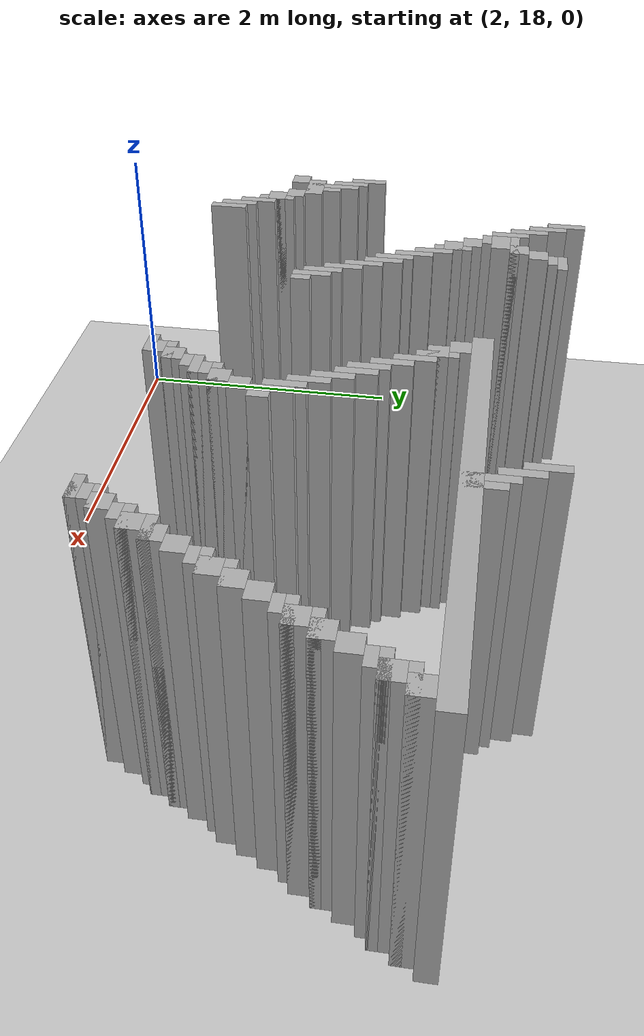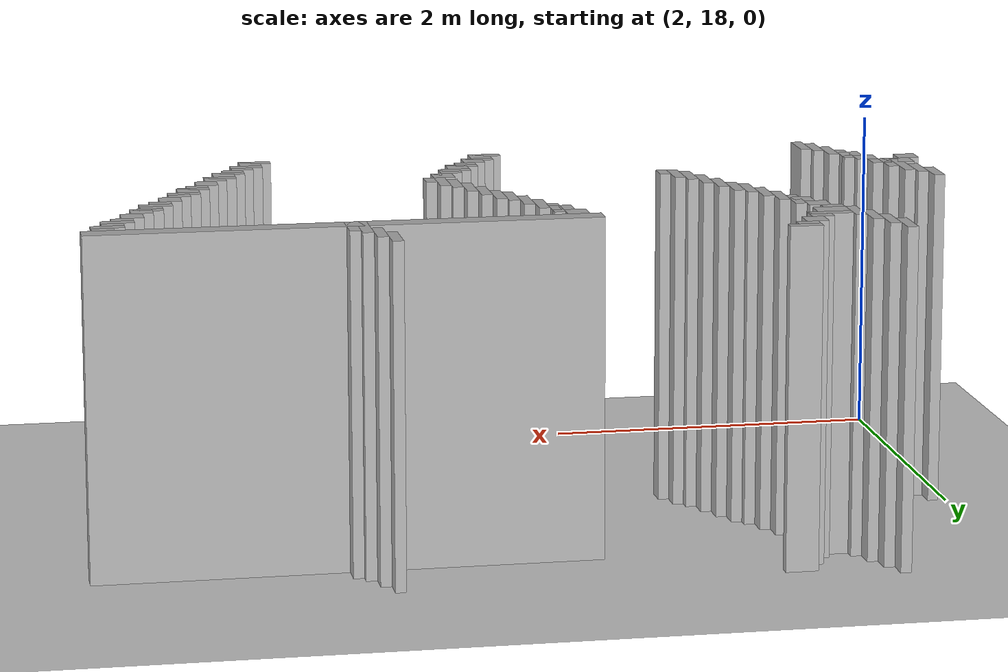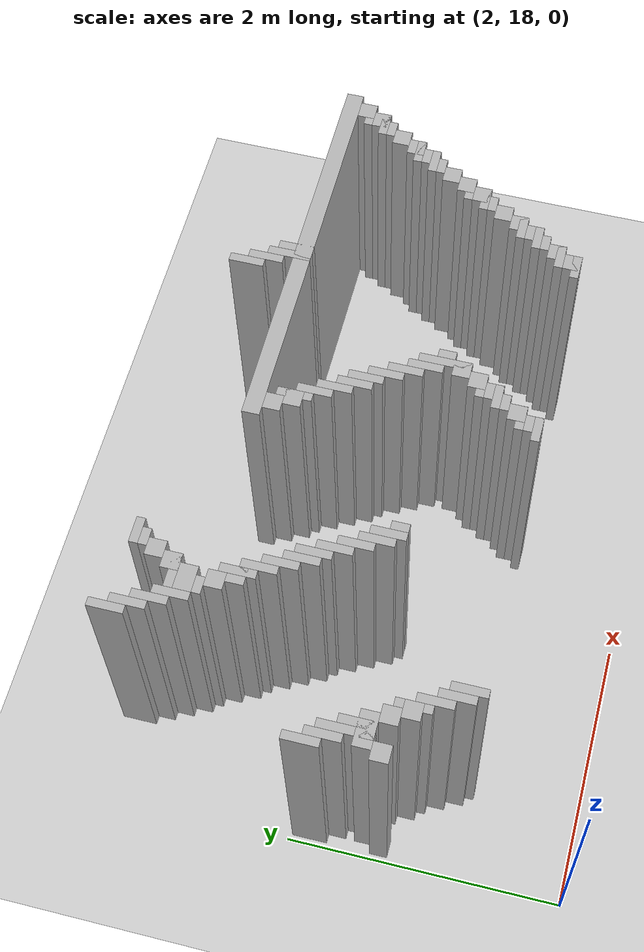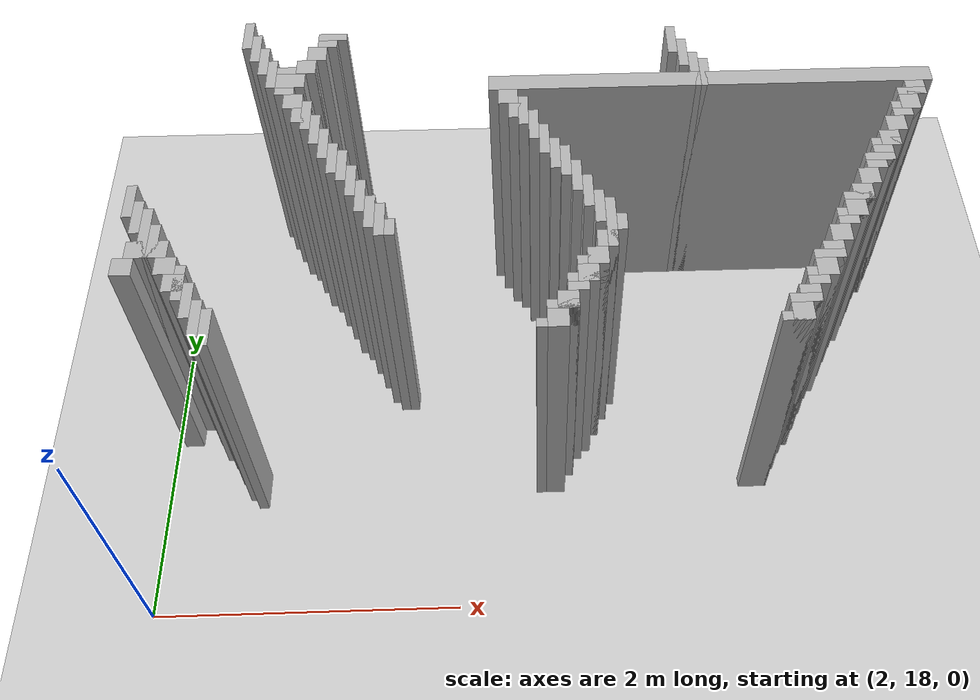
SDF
<sdf version="1.6">
 <world name="slam_world">
  <model name="ground_plane">
   <static>true</static>
   <link name="link">
    <collision name="collision">
     <geometry><plane><normal>0 0 1</normal><size>100 100</size></plane></geometry>
    </collision>
    <visual name="visual">
     <geometry><plane><normal>0 0 1</normal><size>100 100</size></plane></geometry>
     <material>
      <ambient>0.8 0.8 0.8 1</ambient>
      <diffuse>0.8 0.8 0.8 1</diffuse>
      <specular>0.8 0.8 0.8 1</specular>
     </material>
    </visual>
   </link>
  </model>
  <model name="wall_278">
   <static>true</static>
   <pose>2.6489361702127656 21.319148936170212 1.0 0 0 0</pose>
   <link name="link">
    <collision name="collision">
     <geometry><box><size>0.06382978723404255 0.2553191489361702 2.0</size></box></geometry>
    </collision>
    <visual name="visual">
     <geometry><box><size>0.06382978723404255 0.2553191489361702 2.0</size></box></geometry>
     <material><ambient>0.5 0.5 0.5 1</ambient><diffuse>0.7 0.7 0.7 1</diffuse></material>
    </visual>
   </link>
  </model>
  <model name="wall_292">
   <static>true</static>
   <pose>2.712765957446808 21.191489361702125 1.0 0 0 0</pose>
   <link name="link">
    <collision name="collision">
     <geometry><box><size>0.06382978723404255 0.2553191489361702 2.0</size></box></geometry>
    </collision>
    <visual name="visual">
     <geometry><box><size>0.06382978723404255 0.2553191489361702 2.0</size></box></geometry>
     <material><ambient>0.5 0.5 0.5 1</ambient><diffuse>0.7 0.7 0.7 1</diffuse></material>
    </visual>
   </link>
  </model>
  <model name="wall_293">
   <static>true</static>
   <pose>3.223404255319149 21.28723404255319 1.0 0 0 0</pose>
   <link name="link">
    <collision name="collision">
     <geometry><box><size>0.19148936170212766 0.06382978723404255 2.0</size></box></geometry>
    </collision>
    <visual name="visual">
     <geometry><box><size>0.19148936170212766 0.06382978723404255 2.0</size></box></geometry>
     <material><ambient>0.5 0.5 0.5 1</ambient><diffuse>0.7 0.7 0.7 1</diffuse></material>
    </visual>
   </link>
  </model>
  <model name="wall_294">
   <static>true</static>
   <pose>5.5212765957446805 21.191489361702125 1.0 0 0 0</pose>
   <link name="link">
    <collision name="collision">
     <geometry><box><size>0.06382978723404255 0.2553191489361702 2.0</size></box></geometry>
    </collision>
    <visual name="visual">
     <geometry><box><size>0.06382978723404255 0.2553191489361702 2.0</size></box></geometry>
     <material><ambient>0.5 0.5 0.5 1</ambient><diffuse>0.7 0.7 0.7 1</diffuse></material>
    </visual>
   </link>
  </model>
  <model name="wall_300">
   <static>true</static>
   <pose>3.1914893617021276 21.223404255319146 1.0 0 0 0</pose>
   <link name="link">
    <collision name="collision">
     <geometry><box><size>0.1276595744680851 0.06382978723404255 2.0</size></box></geometry>
    </collision>
    <visual name="visual">
     <geometry><box><size>0.1276595744680851 0.06382978723404255 2.0</size></box></geometry>
     <material><ambient>0.5 0.5 0.5 1</ambient><diffuse>0.7 0.7 0.7 1</diffuse></material>
    </visual>
   </link>
  </model>
  <model name="wall_306">
   <static>true</static>
   <pose>2.7765957446808507 21.06382978723404 1.0 0 0 0</pose>
   <link name="link">
    <collision name="collision">
     <geometry><box><size>0.06382978723404255 0.2553191489361702 2.0</size></box></geometry>
    </collision>
    <visual name="visual">
     <geometry><box><size>0.06382978723404255 0.2553191489361702 2.0</size></box></geometry>
     <material><ambient>0.5 0.5 0.5 1</ambient><diffuse>0.7 0.7 0.7 1</diffuse></material>
    </visual>
   </link>
  </model>
  <model name="wall_307">
   <static>true</static>
   <pose>3.127659574468085 21.127659574468083 1.0 0 0 0</pose>
   <link name="link">
    <collision name="collision">
     <geometry><box><size>0.1276595744680851 0.1276595744680851 2.0</size></box></geometry>
    </collision>
    <visual name="visual">
     <geometry><box><size>0.1276595744680851 0.1276595744680851 2.0</size></box></geometry>
     <material><ambient>0.5 0.5 0.5 1</ambient><diffuse>0.7 0.7 0.7 1</diffuse></material>
    </visual>
   </link>
  </model>
  <model name="wall_308">
   <static>true</static>
   <pose>5.585106382978723 21.06382978723404 1.0 0 0 0</pose>
   <link name="link">
    <collision name="collision">
     <geometry><box><size>0.06382978723404255 0.2553191489361702 2.0</size></box></geometry>
    </collision>
    <visual name="visual">
     <geometry><box><size>0.06382978723404255 0.2553191489361702 2.0</size></box></geometry>
     <material><ambient>0.5 0.5 0.5 1</ambient><diffuse>0.7 0.7 0.7 1</diffuse></material>
    </visual>
   </link>
  </model>
  <model name="wall_314">
   <static>true</static>
   <pose>2.840425531914893 20.936170212765955 1.0 0 0 0</pose>
   <link name="link">
    <collision name="collision">
     <geometry><box><size>0.06382978723404255 0.2553191489361702 2.0</size></box></geometry>
    </collision>
    <visual name="visual">
     <geometry><box><size>0.06382978723404255 0.2553191489361702 2.0</size></box></geometry>
     <material><ambient>0.5 0.5 0.5 1</ambient><diffuse>0.7 0.7 0.7 1</diffuse></material>
    </visual>
   </link>
  </model>
  <model name="wall_315">
   <static>true</static>
   <pose>3.0638297872340425 21.0 1.0 0 0 0</pose>
   <link name="link">
    <collision name="collision">
     <geometry><box><size>0.1276595744680851 0.1276595744680851 2.0</size></box></geometry>
    </collision>
    <visual name="visual">
     <geometry><box><size>0.1276595744680851 0.1276595744680851 2.0</size></box></geometry>
     <material><ambient>0.5 0.5 0.5 1</ambient><diffuse>0.7 0.7 0.7 1</diffuse></material>
    </visual>
   </link>
  </model>
  <model name="wall_316">
   <static>true</static>
   <pose>5.648936170212766 20.904255319148934 1.0 0 0 0</pose>
   <link name="link">
    <collision name="collision">
     <geometry><box><size>0.06382978723404255 0.3191489361702127 2.0</size></box></geometry>
    </collision>
    <visual name="visual">
     <geometry><box><size>0.06382978723404255 0.3191489361702127 2.0</size></box></geometry>
     <material><ambient>0.5 0.5 0.5 1</ambient><diffuse>0.7 0.7 0.7 1</diffuse></material>
    </visual>
   </link>
  </model>
  <model name="wall_322">
   <static>true</static>
   <pose>2.9999999999999996 20.968085106382976 1.0 0 0 0</pose>
   <link name="link">
    <collision name="collision">
     <geometry><box><size>0.2553191489361702 0.06382978723404255 2.0</size></box></geometry>
    </collision>
    <visual name="visual">
     <geometry><box><size>0.2553191489361702 0.06382978723404255 2.0</size></box></geometry>
     <material><ambient>0.5 0.5 0.5 1</ambient><diffuse>0.7 0.7 0.7 1</diffuse></material>
    </visual>
   </link>
  </model>
  <model name="wall_323">
   <static>true</static>
   <pose>5.712765957446808 20.872340425531913 1.0 0 0 0</pose>
   <link name="link">
    <collision name="collision">
     <geometry><box><size>0.06382978723404255 0.2553191489361702 2.0</size></box></geometry>
    </collision>
    <visual name="visual">
     <geometry><box><size>0.06382978723404255 0.2553191489361702 2.0</size></box></geometry>
     <material><ambient>0.5 0.5 0.5 1</ambient><diffuse>0.7 0.7 0.7 1</diffuse></material>
    </visual>
   </link>
  </model>
  <model name="wall_329">
   <static>true</static>
   <pose>2.9680851063829783 20.872340425531913 1.0 0 0 0</pose>
   <link name="link">
    <collision name="collision">
     <geometry><box><size>0.19148936170212766 0.1276595744680851 2.0</size></box></geometry>
    </collision>
    <visual name="visual">
     <geometry><box><size>0.19148936170212766 0.1276595744680851 2.0</size></box></geometry>
     <material><ambient>0.5 0.5 0.5 1</ambient><diffuse>0.7 0.7 0.7 1</diffuse></material>
    </visual>
   </link>
  </model>
  <model name="wall_335">
   <static>true</static>
   <pose>5.744680851063829 20.80851063829787 1.0 0 0 0</pose>
   <link name="link">
    <collision name="collision">
     <geometry><box><size>2.936170212765957 0.1276595744680851 2.0</size></box></geometry>
    </collision>
    <visual name="visual">
     <geometry><box><size>2.936170212765957 0.1276595744680851 2.0</size></box></geometry>
     <material><ambient>0.5 0.5 0.5 1</ambient><diffuse>0.7 0.7 0.7 1</diffuse></material>
    </visual>
   </link>
  </model>
  <model name="wall_340">
   <static>true</static>
   <pose>2.936170212765957 20.77659574468085 1.0 0 0 0</pose>
   <link name="link">
    <collision name="collision">
     <geometry><box><size>0.1276595744680851 0.06382978723404255 2.0</size></box></geometry>
    </collision>
    <visual name="visual">
     <geometry><box><size>0.1276595744680851 0.06382978723404255 2.0</size></box></geometry>
     <material><ambient>0.5 0.5 0.5 1</ambient><diffuse>0.7 0.7 0.7 1</diffuse></material>
    </visual>
   </link>
  </model>
  <model name="wall_345">
   <static>true</static>
   <pose>2.9999999999999996 20.680851063829785 1.0 0 0 0</pose>
   <link name="link">
    <collision name="collision">
     <geometry><box><size>0.1276595744680851 0.1276595744680851 2.0</size></box></geometry>
    </collision>
    <visual name="visual">
     <geometry><box><size>0.1276595744680851 0.1276595744680851 2.0</size></box></geometry>
     <material><ambient>0.5 0.5 0.5 1</ambient><diffuse>0.7 0.7 0.7 1</diffuse></material>
    </visual>
   </link>
  </model>
  <model name="wall_346">
   <static>true</static>
   <pose>4.404255319148936 20.680851063829785 1.0 0 0 0</pose>
   <link name="link">
    <collision name="collision">
     <geometry><box><size>0.1276595744680851 0.1276595744680851 2.0</size></box></geometry>
    </collision>
    <visual name="visual">
     <geometry><box><size>0.1276595744680851 0.1276595744680851 2.0</size></box></geometry>
     <material><ambient>0.5 0.5 0.5 1</ambient><diffuse>0.7 0.7 0.7 1</diffuse></material>
    </visual>
   </link>
  </model>
  <model name="wall_347">
   <static>true</static>
   <pose>7.085106382978723 20.680851063829785 1.0 0 0 0</pose>
   <link name="link">
    <collision name="collision">
     <geometry><box><size>0.1276595744680851 0.1276595744680851 2.0</size></box></geometry>
    </collision>
    <visual name="visual">
     <geometry><box><size>0.1276595744680851 0.1276595744680851 2.0</size></box></geometry>
     <material><ambient>0.5 0.5 0.5 1</ambient><diffuse>0.7 0.7 0.7 1</diffuse></material>
    </visual>
   </link>
  </model>
  <model name="wall_353">
   <static>true</static>
   <pose>3.095744680851064 20.5531914893617 1.0 0 0 0</pose>
   <link name="link">
    <collision name="collision">
     <geometry><box><size>0.06382978723404255 0.2553191489361702 2.0</size></box></geometry>
    </collision>
    <visual name="visual">
     <geometry><box><size>0.06382978723404255 0.2553191489361702 2.0</size></box></geometry>
     <material><ambient>0.5 0.5 0.5 1</ambient><diffuse>0.7 0.7 0.7 1</diffuse></material>
    </visual>
   </link>
  </model>
  <model name="wall_354">
   <static>true</static>
   <pose>4.5 20.5531914893617 1.0 0 0 0</pose>
   <link name="link">
    <collision name="collision">
     <geometry><box><size>0.06382978723404255 0.2553191489361702 2.0</size></box></geometry>
    </collision>
    <visual name="visual">
     <geometry><box><size>0.06382978723404255 0.2553191489361702 2.0</size></box></geometry>
     <material><ambient>0.5 0.5 0.5 1</ambient><diffuse>0.7 0.7 0.7 1</diffuse></material>
    </visual>
   </link>
  </model>
  <model name="wall_355">
   <static>true</static>
   <pose>7.053191489361701 20.648936170212764 1.0 0 0 0</pose>
   <link name="link">
    <collision name="collision">
     <geometry><box><size>0.19148936170212766 0.06382978723404255 2.0</size></box></geometry>
    </collision>
    <visual name="visual">
     <geometry><box><size>0.19148936170212766 0.06382978723404255 2.0</size></box></geometry>
     <material><ambient>0.5 0.5 0.5 1</ambient><diffuse>0.7 0.7 0.7 1</diffuse></material>
    </visual>
   </link>
  </model>
  <model name="wall_361">
   <static>true</static>
   <pose>3.0638297872340425 20.5531914893617 1.0 0 0 0</pose>
   <link name="link">
    <collision name="collision">
     <geometry><box><size>0.1276595744680851 0.1276595744680851 2.0</size></box></geometry>
    </collision>
    <visual name="visual">
     <geometry><box><size>0.1276595744680851 0.1276595744680851 2.0</size></box></geometry>
     <material><ambient>0.5 0.5 0.5 1</ambient><diffuse>0.7 0.7 0.7 1</diffuse></material>
    </visual>
   </link>
  </model>
  <model name="wall_362">
   <static>true</static>
   <pose>4.468085106382978 20.5531914893617 1.0 0 0 0</pose>
   <link name="link">
    <collision name="collision">
     <geometry><box><size>0.1276595744680851 0.1276595744680851 2.0</size></box></geometry>
    </collision>
    <visual name="visual">
     <geometry><box><size>0.1276595744680851 0.1276595744680851 2.0</size></box></geometry>
     <material><ambient>0.5 0.5 0.5 1</ambient><diffuse>0.7 0.7 0.7 1</diffuse></material>
    </visual>
   </link>
  </model>
  <model name="wall_363">
   <static>true</static>
   <pose>7.0212765957446805 20.5531914893617 1.0 0 0 0</pose>
   <link name="link">
    <collision name="collision">
     <geometry><box><size>0.1276595744680851 0.1276595744680851 2.0</size></box></geometry>
    </collision>
    <visual name="visual">
     <geometry><box><size>0.1276595744680851 0.1276595744680851 2.0</size></box></geometry>
     <material><ambient>0.5 0.5 0.5 1</ambient><diffuse>0.7 0.7 0.7 1</diffuse></material>
    </visual>
   </link>
  </model>
  <model name="wall_370">
   <static>true</static>
   <pose>3.1595744680851063 20.425531914893615 1.0 0 0 0</pose>
   <link name="link">
    <collision name="collision">
     <geometry><box><size>0.06382978723404255 0.2553191489361702 2.0</size></box></geometry>
    </collision>
    <visual name="visual">
     <geometry><box><size>0.06382978723404255 0.2553191489361702 2.0</size></box></geometry>
     <material><ambient>0.5 0.5 0.5 1</ambient><diffuse>0.7 0.7 0.7 1</diffuse></material>
    </visual>
   </link>
  </model>
  <model name="wall_371">
   <static>true</static>
   <pose>4.5638297872340425 20.425531914893615 1.0 0 0 0</pose>
   <link name="link">
    <collision name="collision">
     <geometry><box><size>0.06382978723404255 0.2553191489361702 2.0</size></box></geometry>
    </collision>
    <visual name="visual">
     <geometry><box><size>0.06382978723404255 0.2553191489361702 2.0</size></box></geometry>
     <material><ambient>0.5 0.5 0.5 1</ambient><diffuse>0.7 0.7 0.7 1</diffuse></material>
    </visual>
   </link>
  </model>
  <model name="wall_372">
   <static>true</static>
   <pose>6.989361702127659 20.52127659574468 1.0 0 0 0</pose>
   <link name="link">
    <collision name="collision">
     <geometry><box><size>0.19148936170212766 0.06382978723404255 2.0</size></box></geometry>
    </collision>
    <visual name="visual">
     <geometry><box><size>0.19148936170212766 0.06382978723404255 2.0</size></box></geometry>
     <material><ambient>0.5 0.5 0.5 1</ambient><diffuse>0.7 0.7 0.7 1</diffuse></material>
    </visual>
   </link>
  </model>
  <model name="wall_377">
   <static>true</static>
   <pose>6.957446808510638 20.457446808510635 1.0 0 0 0</pose>
   <link name="link">
    <collision name="collision">
     <geometry><box><size>0.1276595744680851 0.06382978723404255 2.0</size></box></geometry>
    </collision>
    <visual name="visual">
     <geometry><box><size>0.1276595744680851 0.06382978723404255 2.0</size></box></geometry>
     <material><ambient>0.5 0.5 0.5 1</ambient><diffuse>0.7 0.7 0.7 1</diffuse></material>
    </visual>
   </link>
  </model>
  <model name="wall_382">
   <static>true</static>
   <pose>3.223404255319149 20.29787234042553 1.0 0 0 0</pose>
   <link name="link">
    <collision name="collision">
     <geometry><box><size>0.06382978723404255 0.2553191489361702 2.0</size></box></geometry>
    </collision>
    <visual name="visual">
     <geometry><box><size>0.06382978723404255 0.2553191489361702 2.0</size></box></geometry>
     <material><ambient>0.5 0.5 0.5 1</ambient><diffuse>0.7 0.7 0.7 1</diffuse></material>
    </visual>
   </link>
  </model>
  <model name="wall_383">
   <static>true</static>
   <pose>4.627659574468085 20.29787234042553 1.0 0 0 0</pose>
   <link name="link">
    <collision name="collision">
     <geometry><box><size>0.06382978723404255 0.2553191489361702 2.0</size></box></geometry>
    </collision>
    <visual name="visual">
     <geometry><box><size>0.06382978723404255 0.2553191489361702 2.0</size></box></geometry>
     <material><ambient>0.5 0.5 0.5 1</ambient><diffuse>0.7 0.7 0.7 1</diffuse></material>
    </visual>
   </link>
  </model>
  <model name="wall_384">
   <static>true</static>
   <pose>6.8936170212765955 20.361702127659573 1.0 0 0 0</pose>
   <link name="link">
    <collision name="collision">
     <geometry><box><size>0.1276595744680851 0.1276595744680851 2.0</size></box></geometry>
    </collision>
    <visual name="visual">
     <geometry><box><size>0.1276595744680851 0.1276595744680851 2.0</size></box></geometry>
     <material><ambient>0.5 0.5 0.5 1</ambient><diffuse>0.7 0.7 0.7 1</diffuse></material>
    </visual>
   </link>
  </model>
  <model name="wall_391">
   <static>true</static>
   <pose>3.2872340425531914 20.170212765957444 1.0 0 0 0</pose>
   <link name="link">
    <collision name="collision">
     <geometry><box><size>0.06382978723404255 0.2553191489361702 2.0</size></box></geometry>
    </collision>
    <visual name="visual">
     <geometry><box><size>0.06382978723404255 0.2553191489361702 2.0</size></box></geometry>
     <material><ambient>0.5 0.5 0.5 1</ambient><diffuse>0.7 0.7 0.7 1</diffuse></material>
    </visual>
   </link>
  </model>
  <model name="wall_392">
   <static>true</static>
   <pose>4.691489361702128 20.170212765957444 1.0 0 0 0</pose>
   <link name="link">
    <collision name="collision">
     <geometry><box><size>0.06382978723404255 0.2553191489361702 2.0</size></box></geometry>
    </collision>
    <visual name="visual">
     <geometry><box><size>0.06382978723404255 0.2553191489361702 2.0</size></box></geometry>
     <material><ambient>0.5 0.5 0.5 1</ambient><diffuse>0.7 0.7 0.7 1</diffuse></material>
    </visual>
   </link>
  </model>
  <model name="wall_393">
   <static>true</static>
   <pose>6.829787234042553 20.234042553191486 1.0 0 0 0</pose>
   <link name="link">
    <collision name="collision">
     <geometry><box><size>0.1276595744680851 0.1276595744680851 2.0</size></box></geometry>
    </collision>
    <visual name="visual">
     <geometry><box><size>0.1276595744680851 0.1276595744680851 2.0</size></box></geometry>
     <material><ambient>0.5 0.5 0.5 1</ambient><diffuse>0.7 0.7 0.7 1</diffuse></material>
    </visual>
   </link>
  </model>
  <model name="wall_400">
   <static>true</static>
   <pose>3.351063829787234 20.106382978723403 1.0 0 0 0</pose>
   <link name="link">
    <collision name="collision">
     <geometry><box><size>0.06382978723404255 0.2553191489361702 2.0</size></box></geometry>
    </collision>
    <visual name="visual">
     <geometry><box><size>0.06382978723404255 0.2553191489361702 2.0</size></box></geometry>
     <material><ambient>0.5 0.5 0.5 1</ambient><diffuse>0.7 0.7 0.7 1</diffuse></material>
    </visual>
   </link>
  </model>
  <model name="wall_401">
   <static>true</static>
   <pose>4.75531914893617 20.106382978723403 1.0 0 0 0</pose>
   <link name="link">
    <collision name="collision">
     <geometry><box><size>0.06382978723404255 0.2553191489361702 2.0</size></box></geometry>
    </collision>
    <visual name="visual">
     <geometry><box><size>0.06382978723404255 0.2553191489361702 2.0</size></box></geometry>
     <material><ambient>0.5 0.5 0.5 1</ambient><diffuse>0.7 0.7 0.7 1</diffuse></material>
    </visual>
   </link>
  </model>
  <model name="wall_402">
   <static>true</static>
   <pose>6.797872340425531 20.202127659574465 1.0 0 0 0</pose>
   <link name="link">
    <collision name="collision">
     <geometry><box><size>0.19148936170212766 0.06382978723404255 2.0</size></box></geometry>
    </collision>
    <visual name="visual">
     <geometry><box><size>0.19148936170212766 0.06382978723404255 2.0</size></box></geometry>
     <material><ambient>0.5 0.5 0.5 1</ambient><diffuse>0.7 0.7 0.7 1</diffuse></material>
    </visual>
   </link>
  </model>
  <model name="wall_407">
   <static>true</static>
   <pose>6.76595744680851 20.106382978723403 1.0 0 0 0</pose>
   <link name="link">
    <collision name="collision">
     <geometry><box><size>0.1276595744680851 0.1276595744680851 2.0</size></box></geometry>
    </collision>
    <visual name="visual">
     <geometry><box><size>0.1276595744680851 0.1276595744680851 2.0</size></box></geometry>
     <material><ambient>0.5 0.5 0.5 1</ambient><diffuse>0.7 0.7 0.7 1</diffuse></material>
    </visual>
   </link>
  </model>
  <model name="wall_411">
   <static>true</static>
   <pose>3.4148936170212765 19.978723404255316 1.0 0 0 0</pose>
   <link name="link">
    <collision name="collision">
     <geometry><box><size>0.06382978723404255 0.2553191489361702 2.0</size></box></geometry>
    </collision>
    <visual name="visual">
     <geometry><box><size>0.06382978723404255 0.2553191489361702 2.0</size></box></geometry>
     <material><ambient>0.5 0.5 0.5 1</ambient><diffuse>0.7 0.7 0.7 1</diffuse></material>
    </visual>
   </link>
  </model>
  <model name="wall_412">
   <static>true</static>
   <pose>4.819148936170213 19.978723404255316 1.0 0 0 0</pose>
   <link name="link">
    <collision name="collision">
     <geometry><box><size>0.06382978723404255 0.2553191489361702 2.0</size></box></geometry>
    </collision>
    <visual name="visual">
     <geometry><box><size>0.06382978723404255 0.2553191489361702 2.0</size></box></geometry>
     <material><ambient>0.5 0.5 0.5 1</ambient><diffuse>0.7 0.7 0.7 1</diffuse></material>
    </visual>
   </link>
  </model>
  <model name="wall_413">
   <static>true</static>
   <pose>6.734042553191489 20.074468085106382 1.0 0 0 0</pose>
   <link name="link">
    <collision name="collision">
     <geometry><box><size>0.19148936170212766 0.06382978723404255 2.0</size></box></geometry>
    </collision>
    <visual name="visual">
     <geometry><box><size>0.19148936170212766 0.06382978723404255 2.0</size></box></geometry>
     <material><ambient>0.5 0.5 0.5 1</ambient><diffuse>0.7 0.7 0.7 1</diffuse></material>
    </visual>
   </link>
  </model>
  <model name="wall_418">
   <static>true</static>
   <pose>6.702127659574468 20.01063829787234 1.0 0 0 0</pose>
   <link name="link">
    <collision name="collision">
     <geometry><box><size>0.1276595744680851 0.06382978723404255 2.0</size></box></geometry>
    </collision>
    <visual name="visual">
     <geometry><box><size>0.1276595744680851 0.06382978723404255 2.0</size></box></geometry>
     <material><ambient>0.5 0.5 0.5 1</ambient><diffuse>0.7 0.7 0.7 1</diffuse></material>
    </visual>
   </link>
  </model>
  <model name="wall_421">
   <static>true</static>
   <pose>2.074468085106383 19.851063829787233 1.0 0 0 0</pose>
   <link name="link">
    <collision name="collision">
     <geometry><box><size>0.06382978723404255 0.2553191489361702 2.0</size></box></geometry>
    </collision>
    <visual name="visual">
     <geometry><box><size>0.06382978723404255 0.2553191489361702 2.0</size></box></geometry>
     <material><ambient>0.5 0.5 0.5 1</ambient><diffuse>0.7 0.7 0.7 1</diffuse></material>
    </visual>
   </link>
  </model>
  <model name="wall_422">
   <static>true</static>
   <pose>3.478723404255319 19.851063829787233 1.0 0 0 0</pose>
   <link name="link">
    <collision name="collision">
     <geometry><box><size>0.06382978723404255 0.2553191489361702 2.0</size></box></geometry>
    </collision>
    <visual name="visual">
     <geometry><box><size>0.06382978723404255 0.2553191489361702 2.0</size></box></geometry>
     <material><ambient>0.5 0.5 0.5 1</ambient><diffuse>0.7 0.7 0.7 1</diffuse></material>
    </visual>
   </link>
  </model>
  <model name="wall_423">
   <static>true</static>
   <pose>4.882978723404255 19.851063829787233 1.0 0 0 0</pose>
   <link name="link">
    <collision name="collision">
     <geometry><box><size>0.06382978723404255 0.2553191489361702 2.0</size></box></geometry>
    </collision>
    <visual name="visual">
     <geometry><box><size>0.06382978723404255 0.2553191489361702 2.0</size></box></geometry>
     <material><ambient>0.5 0.5 0.5 1</ambient><diffuse>0.7 0.7 0.7 1</diffuse></material>
    </visual>
   </link>
  </model>
  <model name="wall_424">
   <static>true</static>
   <pose>6.638297872340425 19.914893617021274 1.0 0 0 0</pose>
   <link name="link">
    <collision name="collision">
     <geometry><box><size>0.1276595744680851 0.1276595744680851 2.0</size></box></geometry>
    </collision>
    <visual name="visual">
     <geometry><box><size>0.1276595744680851 0.1276595744680851 2.0</size></box></geometry>
     <material><ambient>0.5 0.5 0.5 1</ambient><diffuse>0.7 0.7 0.7 1</diffuse></material>
    </visual>
   </link>
  </model>
  <model name="wall_430">
   <static>true</static>
   <pose>2.1382978723404253 19.723404255319146 1.0 0 0 0</pose>
   <link name="link">
    <collision name="collision">
     <geometry><box><size>0.06382978723404255 0.2553191489361702 2.0</size></box></geometry>
    </collision>
    <visual name="visual">
     <geometry><box><size>0.06382978723404255 0.2553191489361702 2.0</size></box></geometry>
     <material><ambient>0.5 0.5 0.5 1</ambient><diffuse>0.7 0.7 0.7 1</diffuse></material>
    </visual>
   </link>
  </model>
  <model name="wall_431">
   <static>true</static>
   <pose>3.5425531914893615 19.723404255319146 1.0 0 0 0</pose>
   <link name="link">
    <collision name="collision">
     <geometry><box><size>0.06382978723404255 0.2553191489361702 2.0</size></box></geometry>
    </collision>
    <visual name="visual">
     <geometry><box><size>0.06382978723404255 0.2553191489361702 2.0</size></box></geometry>
     <material><ambient>0.5 0.5 0.5 1</ambient><diffuse>0.7 0.7 0.7 1</diffuse></material>
    </visual>
   </link>
  </model>
  <model name="wall_432">
   <static>true</static>
   <pose>4.946808510638298 19.723404255319146 1.0 0 0 0</pose>
   <link name="link">
    <collision name="collision">
     <geometry><box><size>0.06382978723404255 0.2553191489361702 2.0</size></box></geometry>
    </collision>
    <visual name="visual">
     <geometry><box><size>0.06382978723404255 0.2553191489361702 2.0</size></box></geometry>
     <material><ambient>0.5 0.5 0.5 1</ambient><diffuse>0.7 0.7 0.7 1</diffuse></material>
    </visual>
   </link>
  </model>
  <model name="wall_433">
   <static>true</static>
   <pose>6.574468085106383 19.78723404255319 1.0 0 0 0</pose>
   <link name="link">
    <collision name="collision">
     <geometry><box><size>0.1276595744680851 0.1276595744680851 2.0</size></box></geometry>
    </collision>
    <visual name="visual">
     <geometry><box><size>0.1276595744680851 0.1276595744680851 2.0</size></box></geometry>
     <material><ambient>0.5 0.5 0.5 1</ambient><diffuse>0.7 0.7 0.7 1</diffuse></material>
    </visual>
   </link>
  </model>
  <model name="wall_439">
   <static>true</static>
   <pose>2.202127659574468 19.595744680851062 1.0 0 0 0</pose>
   <link name="link">
    <collision name="collision">
     <geometry><box><size>0.06382978723404255 0.3829787234042553 2.0</size></box></geometry>
    </collision>
    <visual name="visual">
     <geometry><box><size>0.06382978723404255 0.3829787234042553 2.0</size></box></geometry>
     <material><ambient>0.5 0.5 0.5 1</ambient><diffuse>0.7 0.7 0.7 1</diffuse></material>
    </visual>
   </link>
  </model>
  <model name="wall_440">
   <static>true</static>
   <pose>3.606382978723404 19.659574468085104 1.0 0 0 0</pose>
   <link name="link">
    <collision name="collision">
     <geometry><box><size>0.06382978723404255 0.2553191489361702 2.0</size></box></geometry>
    </collision>
    <visual name="visual">
     <geometry><box><size>0.06382978723404255 0.2553191489361702 2.0</size></box></geometry>
     <material><ambient>0.5 0.5 0.5 1</ambient><diffuse>0.7 0.7 0.7 1</diffuse></material>
    </visual>
   </link>
  </model>
  <model name="wall_441">
   <static>true</static>
   <pose>5.01063829787234 19.595744680851062 1.0 0 0 0</pose>
   <link name="link">
    <collision name="collision">
     <geometry><box><size>0.06382978723404255 0.3829787234042553 2.0</size></box></geometry>
    </collision>
    <visual name="visual">
     <geometry><box><size>0.06382978723404255 0.3829787234042553 2.0</size></box></geometry>
     <material><ambient>0.5 0.5 0.5 1</ambient><diffuse>0.7 0.7 0.7 1</diffuse></material>
    </visual>
   </link>
  </model>
  <model name="wall_442">
   <static>true</static>
   <pose>6.542553191489361 19.75531914893617 1.0 0 0 0</pose>
   <link name="link">
    <collision name="collision">
     <geometry><box><size>0.19148936170212766 0.06382978723404255 2.0</size></box></geometry>
    </collision>
    <visual name="visual">
     <geometry><box><size>0.19148936170212766 0.06382978723404255 2.0</size></box></geometry>
     <material><ambient>0.5 0.5 0.5 1</ambient><diffuse>0.7 0.7 0.7 1</diffuse></material>
    </visual>
   </link>
  </model>
  <model name="wall_447">
   <static>true</static>
   <pose>6.51063829787234 19.659574468085104 1.0 0 0 0</pose>
   <link name="link">
    <collision name="collision">
     <geometry><box><size>0.1276595744680851 0.1276595744680851 2.0</size></box></geometry>
    </collision>
    <visual name="visual">
     <geometry><box><size>0.1276595744680851 0.1276595744680851 2.0</size></box></geometry>
     <material><ambient>0.5 0.5 0.5 1</ambient><diffuse>0.7 0.7 0.7 1</diffuse></material>
    </visual>
   </link>
  </model>
  <model name="wall_450">
   <static>true</static>
   <pose>2.2659574468085104 19.53191489361702 1.0 0 0 0</pose>
   <link name="link">
    <collision name="collision">
     <geometry><box><size>0.06382978723404255 0.2553191489361702 2.0</size></box></geometry>
    </collision>
    <visual name="visual">
     <geometry><box><size>0.06382978723404255 0.2553191489361702 2.0</size></box></geometry>
     <material><ambient>0.5 0.5 0.5 1</ambient><diffuse>0.7 0.7 0.7 1</diffuse></material>
    </visual>
   </link>
  </model>
  <model name="wall_451">
   <static>true</static>
   <pose>3.6702127659574466 19.595744680851062 1.0 0 0 0</pose>
   <link name="link">
    <collision name="collision">
     <geometry><box><size>0.06382978723404255 0.1276595744680851 2.0</size></box></geometry>
    </collision>
    <visual name="visual">
     <geometry><box><size>0.06382978723404255 0.1276595744680851 2.0</size></box></geometry>
     <material><ambient>0.5 0.5 0.5 1</ambient><diffuse>0.7 0.7 0.7 1</diffuse></material>
    </visual>
   </link>
  </model>
  <model name="wall_452">
   <static>true</static>
   <pose>5.074468085106383 19.595744680851062 1.0 0 0 0</pose>
   <link name="link">
    <collision name="collision">
     <geometry><box><size>0.06382978723404255 0.1276595744680851 2.0</size></box></geometry>
    </collision>
    <visual name="visual">
     <geometry><box><size>0.06382978723404255 0.1276595744680851 2.0</size></box></geometry>
     <material><ambient>0.5 0.5 0.5 1</ambient><diffuse>0.7 0.7 0.7 1</diffuse></material>
    </visual>
   </link>
  </model>
  <model name="wall_453">
   <static>true</static>
   <pose>6.478723404255319 19.627659574468083 1.0 0 0 0</pose>
   <link name="link">
    <collision name="collision">
     <geometry><box><size>0.19148936170212766 0.06382978723404255 2.0</size></box></geometry>
    </collision>
    <visual name="visual">
     <geometry><box><size>0.19148936170212766 0.06382978723404255 2.0</size></box></geometry>
     <material><ambient>0.5 0.5 0.5 1</ambient><diffuse>0.7 0.7 0.7 1</diffuse></material>
    </visual>
   </link>
  </model>
  <model name="wall_458">
   <static>true</static>
   <pose>6.446808510638298 19.56382978723404 1.0 0 0 0</pose>
   <link name="link">
    <collision name="collision">
     <geometry><box><size>0.1276595744680851 0.06382978723404255 2.0</size></box></geometry>
    </collision>
    <visual name="visual">
     <geometry><box><size>0.1276595744680851 0.06382978723404255 2.0</size></box></geometry>
     <material><ambient>0.5 0.5 0.5 1</ambient><diffuse>0.7 0.7 0.7 1</diffuse></material>
    </visual>
   </link>
  </model>
  <model name="wall_461">
   <static>true</static>
   <pose>2.234042553191489 19.468085106382976 1.0 0 0 0</pose>
   <link name="link">
    <collision name="collision">
     <geometry><box><size>0.2553191489361702 0.1276595744680851 2.0</size></box></geometry>
    </collision>
    <visual name="visual">
     <geometry><box><size>0.2553191489361702 0.1276595744680851 2.0</size></box></geometry>
     <material><ambient>0.5 0.5 0.5 1</ambient><diffuse>0.7 0.7 0.7 1</diffuse></material>
    </visual>
   </link>
  </model>
  <model name="wall_462">
   <static>true</static>
   <pose>4.978723404255319 19.468085106382976 1.0 0 0 0</pose>
   <link name="link">
    <collision name="collision">
     <geometry><box><size>0.1276595744680851 0.1276595744680851 2.0</size></box></geometry>
    </collision>
    <visual name="visual">
     <geometry><box><size>0.1276595744680851 0.1276595744680851 2.0</size></box></geometry>
     <material><ambient>0.5 0.5 0.5 1</ambient><diffuse>0.7 0.7 0.7 1</diffuse></material>
    </visual>
   </link>
  </model>
  <model name="wall_463">
   <static>true</static>
   <pose>6.382978723404255 19.468085106382976 1.0 0 0 0</pose>
   <link name="link">
    <collision name="collision">
     <geometry><box><size>0.1276595744680851 0.1276595744680851 2.0</size></box></geometry>
    </collision>
    <visual name="visual">
     <geometry><box><size>0.1276595744680851 0.1276595744680851 2.0</size></box></geometry>
     <material><ambient>0.5 0.5 0.5 1</ambient><diffuse>0.7 0.7 0.7 1</diffuse></material>
    </visual>
   </link>
  </model>
  <model name="wall_467">
   <static>true</static>
   <pose>2.106382978723404 19.340425531914892 1.0 0 0 0</pose>
   <link name="link">
    <collision name="collision">
     <geometry><box><size>0.1276595744680851 0.1276595744680851 2.0</size></box></geometry>
    </collision>
    <visual name="visual">
     <geometry><box><size>0.1276595744680851 0.1276595744680851 2.0</size></box></geometry>
     <material><ambient>0.5 0.5 0.5 1</ambient><diffuse>0.7 0.7 0.7 1</diffuse></material>
    </visual>
   </link>
  </model>
  <model name="wall_468">
   <static>true</static>
   <pose>2.361702127659574 19.340425531914892 1.0 0 0 0</pose>
   <link name="link">
    <collision name="collision">
     <geometry><box><size>0.1276595744680851 0.1276595744680851 2.0</size></box></geometry>
    </collision>
    <visual name="visual">
     <geometry><box><size>0.1276595744680851 0.1276595744680851 2.0</size></box></geometry>
     <material><ambient>0.5 0.5 0.5 1</ambient><diffuse>0.7 0.7 0.7 1</diffuse></material>
    </visual>
   </link>
  </model>
  <model name="wall_469">
   <static>true</static>
   <pose>4.914893617021276 19.340425531914892 1.0 0 0 0</pose>
   <link name="link">
    <collision name="collision">
     <geometry><box><size>0.1276595744680851 0.1276595744680851 2.0</size></box></geometry>
    </collision>
    <visual name="visual">
     <geometry><box><size>0.1276595744680851 0.1276595744680851 2.0</size></box></geometry>
     <material><ambient>0.5 0.5 0.5 1</ambient><diffuse>0.7 0.7 0.7 1</diffuse></material>
    </visual>
   </link>
  </model>
  <model name="wall_470">
   <static>true</static>
   <pose>6.319148936170213 19.340425531914892 1.0 0 0 0</pose>
   <link name="link">
    <collision name="collision">
     <geometry><box><size>0.1276595744680851 0.1276595744680851 2.0</size></box></geometry>
    </collision>
    <visual name="visual">
     <geometry><box><size>0.1276595744680851 0.1276595744680851 2.0</size></box></geometry>
     <material><ambient>0.5 0.5 0.5 1</ambient><diffuse>0.7 0.7 0.7 1</diffuse></material>
    </visual>
   </link>
  </model>
  <model name="wall_475">
   <static>true</static>
   <pose>2.457446808510638 19.212765957446805 1.0 0 0 0</pose>
   <link name="link">
    <collision name="collision">
     <geometry><box><size>0.06382978723404255 0.2553191489361702 2.0</size></box></geometry>
    </collision>
    <visual name="visual">
     <geometry><box><size>0.06382978723404255 0.2553191489361702 2.0</size></box></geometry>
     <material><ambient>0.5 0.5 0.5 1</ambient><diffuse>0.7 0.7 0.7 1</diffuse></material>
    </visual>
   </link>
  </model>
  <model name="wall_476">
   <static>true</static>
   <pose>4.882978723404255 19.30851063829787 1.0 0 0 0</pose>
   <link name="link">
    <collision name="collision">
     <geometry><box><size>0.19148936170212766 0.06382978723404255 2.0</size></box></geometry>
    </collision>
    <visual name="visual">
     <geometry><box><size>0.19148936170212766 0.06382978723404255 2.0</size></box></geometry>
     <material><ambient>0.5 0.5 0.5 1</ambient><diffuse>0.7 0.7 0.7 1</diffuse></material>
    </visual>
   </link>
  </model>
  <model name="wall_477">
   <static>true</static>
   <pose>6.287234042553191 19.30851063829787 1.0 0 0 0</pose>
   <link name="link">
    <collision name="collision">
     <geometry><box><size>0.19148936170212766 0.06382978723404255 2.0</size></box></geometry>
    </collision>
    <visual name="visual">
     <geometry><box><size>0.19148936170212766 0.06382978723404255 2.0</size></box></geometry>
     <material><ambient>0.5 0.5 0.5 1</ambient><diffuse>0.7 0.7 0.7 1</diffuse></material>
    </visual>
   </link>
  </model>
  <model name="wall_482">
   <static>true</static>
   <pose>2.4255319148936167 19.212765957446805 1.0 0 0 0</pose>
   <link name="link">
    <collision name="collision">
     <geometry><box><size>0.1276595744680851 0.1276595744680851 2.0</size></box></geometry>
    </collision>
    <visual name="visual">
     <geometry><box><size>0.1276595744680851 0.1276595744680851 2.0</size></box></geometry>
     <material><ambient>0.5 0.5 0.5 1</ambient><diffuse>0.7 0.7 0.7 1</diffuse></material>
    </visual>
   </link>
  </model>
  <model name="wall_483">
   <static>true</static>
   <pose>4.8510638297872335 19.212765957446805 1.0 0 0 0</pose>
   <link name="link">
    <collision name="collision">
     <geometry><box><size>0.1276595744680851 0.1276595744680851 2.0</size></box></geometry>
    </collision>
    <visual name="visual">
     <geometry><box><size>0.1276595744680851 0.1276595744680851 2.0</size></box></geometry>
     <material><ambient>0.5 0.5 0.5 1</ambient><diffuse>0.7 0.7 0.7 1</diffuse></material>
    </visual>
   </link>
  </model>
  <model name="wall_484">
   <static>true</static>
   <pose>6.25531914893617 19.212765957446805 1.0 0 0 0</pose>
   <link name="link">
    <collision name="collision">
     <geometry><box><size>0.1276595744680851 0.1276595744680851 2.0</size></box></geometry>
    </collision>
    <visual name="visual">
     <geometry><box><size>0.1276595744680851 0.1276595744680851 2.0</size></box></geometry>
     <material><ambient>0.5 0.5 0.5 1</ambient><diffuse>0.7 0.7 0.7 1</diffuse></material>
    </visual>
   </link>
  </model>
  <model name="wall_489">
   <static>true</static>
   <pose>2.5212765957446805 19.085106382978722 1.0 0 0 0</pose>
   <link name="link">
    <collision name="collision">
     <geometry><box><size>0.06382978723404255 0.2553191489361702 2.0</size></box></geometry>
    </collision>
    <visual name="visual">
     <geometry><box><size>0.06382978723404255 0.2553191489361702 2.0</size></box></geometry>
     <material><ambient>0.5 0.5 0.5 1</ambient><diffuse>0.7 0.7 0.7 1</diffuse></material>
    </visual>
   </link>
  </model>
  <model name="wall_490">
   <static>true</static>
   <pose>4.819148936170213 19.180851063829785 1.0 0 0 0</pose>
   <link name="link">
    <collision name="collision">
     <geometry><box><size>0.19148936170212766 0.06382978723404255 2.0</size></box></geometry>
    </collision>
    <visual name="visual">
     <geometry><box><size>0.19148936170212766 0.06382978723404255 2.0</size></box></geometry>
     <material><ambient>0.5 0.5 0.5 1</ambient><diffuse>0.7 0.7 0.7 1</diffuse></material>
    </visual>
   </link>
  </model>
  <model name="wall_491">
   <static>true</static>
   <pose>6.223404255319148 19.180851063829785 1.0 0 0 0</pose>
   <link name="link">
    <collision name="collision">
     <geometry><box><size>0.19148936170212766 0.06382978723404255 2.0</size></box></geometry>
    </collision>
    <visual name="visual">
     <geometry><box><size>0.19148936170212766 0.06382978723404255 2.0</size></box></geometry>
     <material><ambient>0.5 0.5 0.5 1</ambient><diffuse>0.7 0.7 0.7 1</diffuse></material>
    </visual>
   </link>
  </model>
  <model name="wall_496">
   <static>true</static>
   <pose>4.787234042553191 19.117021276595743 1.0 0 0 0</pose>
   <link name="link">
    <collision name="collision">
     <geometry><box><size>0.1276595744680851 0.06382978723404255 2.0</size></box></geometry>
    </collision>
    <visual name="visual">
     <geometry><box><size>0.1276595744680851 0.06382978723404255 2.0</size></box></geometry>
     <material><ambient>0.5 0.5 0.5 1</ambient><diffuse>0.7 0.7 0.7 1</diffuse></material>
    </visual>
   </link>
  </model>
  <model name="wall_497">
   <static>true</static>
   <pose>6.191489361702128 19.117021276595743 1.0 0 0 0</pose>
   <link name="link">
    <collision name="collision">
     <geometry><box><size>0.1276595744680851 0.06382978723404255 2.0</size></box></geometry>
    </collision>
    <visual name="visual">
     <geometry><box><size>0.1276595744680851 0.06382978723404255 2.0</size></box></geometry>
     <material><ambient>0.5 0.5 0.5 1</ambient><diffuse>0.7 0.7 0.7 1</diffuse></material>
    </visual>
   </link>
  </model>
  <model name="wall_502">
   <static>true</static>
   <pose>2.585106382978723 18.957446808510635 1.0 0 0 0</pose>
   <link name="link">
    <collision name="collision">
     <geometry><box><size>0.06382978723404255 0.2553191489361702 2.0</size></box></geometry>
    </collision>
    <visual name="visual">
     <geometry><box><size>0.06382978723404255 0.2553191489361702 2.0</size></box></geometry>
     <material><ambient>0.5 0.5 0.5 1</ambient><diffuse>0.7 0.7 0.7 1</diffuse></material>
    </visual>
   </link>
  </model>
  <model name="wall_503">
   <static>true</static>
   <pose>4.723404255319148 19.02127659574468 1.0 0 0 0</pose>
   <link name="link">
    <collision name="collision">
     <geometry><box><size>0.1276595744680851 0.1276595744680851 2.0</size></box></geometry>
    </collision>
    <visual name="visual">
     <geometry><box><size>0.1276595744680851 0.1276595744680851 2.0</size></box></geometry>
     <material><ambient>0.5 0.5 0.5 1</ambient><diffuse>0.7 0.7 0.7 1</diffuse></material>
    </visual>
   </link>
  </model>
  <model name="wall_504">
   <static>true</static>
   <pose>6.127659574468085 19.02127659574468 1.0 0 0 0</pose>
   <link name="link">
    <collision name="collision">
     <geometry><box><size>0.1276595744680851 0.1276595744680851 2.0</size></box></geometry>
    </collision>
    <visual name="visual">
     <geometry><box><size>0.1276595744680851 0.1276595744680851 2.0</size></box></geometry>
     <material><ambient>0.5 0.5 0.5 1</ambient><diffuse>0.7 0.7 0.7 1</diffuse></material>
    </visual>
   </link>
  </model>
  <model name="wall_509">
   <static>true</static>
   <pose>2.6489361702127656 18.893617021276594 1.0 0 0 0</pose>
   <link name="link">
    <collision name="collision">
     <geometry><box><size>0.06382978723404255 0.2553191489361702 2.0</size></box></geometry>
    </collision>
    <visual name="visual">
     <geometry><box><size>0.06382978723404255 0.2553191489361702 2.0</size></box></geometry>
     <material><ambient>0.5 0.5 0.5 1</ambient><diffuse>0.7 0.7 0.7 1</diffuse></material>
    </visual>
   </link>
  </model>
  <model name="wall_510">
   <static>true</static>
   <pose>4.691489361702128 18.98936170212766 1.0 0 0 0</pose>
   <link name="link">
    <collision name="collision">
     <geometry><box><size>0.19148936170212766 0.06382978723404255 2.0</size></box></geometry>
    </collision>
    <visual name="visual">
     <geometry><box><size>0.19148936170212766 0.06382978723404255 2.0</size></box></geometry>
     <material><ambient>0.5 0.5 0.5 1</ambient><diffuse>0.7 0.7 0.7 1</diffuse></material>
    </visual>
   </link>
  </model>
  <model name="wall_511">
   <static>true</static>
   <pose>6.095744680851063 18.98936170212766 1.0 0 0 0</pose>
   <link name="link">
    <collision name="collision">
     <geometry><box><size>0.19148936170212766 0.06382978723404255 2.0</size></box></geometry>
    </collision>
    <visual name="visual">
     <geometry><box><size>0.19148936170212766 0.06382978723404255 2.0</size></box></geometry>
     <material><ambient>0.5 0.5 0.5 1</ambient><diffuse>0.7 0.7 0.7 1</diffuse></material>
    </visual>
   </link>
  </model>
  <model name="wall_516">
   <static>true</static>
   <pose>4.659574468085106 18.893617021276594 1.0 0 0 0</pose>
   <link name="link">
    <collision name="collision">
     <geometry><box><size>0.1276595744680851 0.1276595744680851 2.0</size></box></geometry>
    </collision>
    <visual name="visual">
     <geometry><box><size>0.1276595744680851 0.1276595744680851 2.0</size></box></geometry>
     <material><ambient>0.5 0.5 0.5 1</ambient><diffuse>0.7 0.7 0.7 1</diffuse></material>
    </visual>
   </link>
  </model>
  <model name="wall_517">
   <static>true</static>
   <pose>6.063829787234042 18.893617021276594 1.0 0 0 0</pose>
   <link name="link">
    <collision name="collision">
     <geometry><box><size>0.1276595744680851 0.1276595744680851 2.0</size></box></geometry>
    </collision>
    <visual name="visual">
     <geometry><box><size>0.1276595744680851 0.1276595744680851 2.0</size></box></geometry>
     <material><ambient>0.5 0.5 0.5 1</ambient><diffuse>0.7 0.7 0.7 1</diffuse></material>
    </visual>
   </link>
  </model>
  <model name="wall_523">
   <static>true</static>
   <pose>4.627659574468085 18.861702127659573 1.0 0 0 0</pose>
   <link name="link">
    <collision name="collision">
     <geometry><box><size>0.19148936170212766 0.06382978723404255 2.0</size></box></geometry>
    </collision>
    <visual name="visual">
     <geometry><box><size>0.19148936170212766 0.06382978723404255 2.0</size></box></geometry>
     <material><ambient>0.5 0.5 0.5 1</ambient><diffuse>0.7 0.7 0.7 1</diffuse></material>
    </visual>
   </link>
  </model>
  <model name="wall_524">
   <static>true</static>
   <pose>6.031914893617021 18.861702127659573 1.0 0 0 0</pose>
   <link name="link">
    <collision name="collision">
     <geometry><box><size>0.19148936170212766 0.06382978723404255 2.0</size></box></geometry>
    </collision>
    <visual name="visual">
     <geometry><box><size>0.19148936170212766 0.06382978723404255 2.0</size></box></geometry>
     <material><ambient>0.5 0.5 0.5 1</ambient><diffuse>0.7 0.7 0.7 1</diffuse></material>
    </visual>
   </link>
  </model>
 </world>
</sdf>
